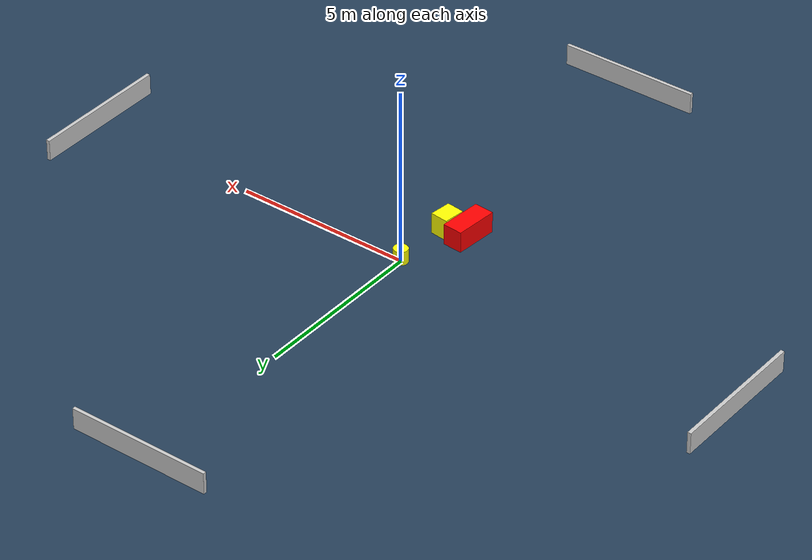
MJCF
<?xml version="1.0" ?>
<mujoco model="generated_environment">
  <option timestep="0.01" integrator="RK4" cone="elliptic"/>
  <default>
    <geom density="1"/>
  </default>
  <asset>
    <texture builtin="gradient" height="3072" name="skybox" rgb1="0.3 0.5 0.7" rgb2="0 0 0" type="skybox" width="512"/>
    <texture builtin="checker" height="300" name="groundplane" rgb1="0.2 0.3 0.4" rgb2="0.1 0.2 0.3" type="2d" width="300"/>
    <material name="groundplane" reflectance="0.2" texrepeat="5 5" texture="groundplane"/>
  </asset>
  <worldbody>
    <light dir="0 0 -1" directional="true" pos="0 0 1.5"/>
    <geom condim="3" friction="0.5 0.005 0.001" material="groundplane" name="floor" pos="0 0 0" size="0 0 0.05" type="plane"/>
    <body name="walls">
      <geom name="wall_1" condim="4" pos="-10.0 0.0 0.3" rgba="0.800000011920929 0.800000011920929 0.800000011920929 1.0" size="0.05 2.0 0.3" type="box"/>
      <geom name="wall_2" condim="4" pos="10.0 0.0 0.3" rgba="0.800000011920929 0.800000011920929 0.800000011920929 1.0" size="0.05 2.0 0.3" type="box"/>
      <geom name="wall_3" condim="4" pos="0.0 -10.0 0.3" rgba="0.800000011920929 0.800000011920929 0.800000011920929 1.0" size="2.0 0.05 0.3" type="box"/>
      <geom name="wall_4" condim="4" pos="0.0 10.0 0.3" rgba="0.800000011920929 0.800000011920929 0.800000011920929 1.0" size="2.0 0.05 0.3" type="box"/>
    </body>
    <body name="robot">
      <joint name="joint_x" type="slide" pos="0 0 0" axis="1 0 0"/>
      <joint name="joint_y" type="slide" pos="0 0 0" axis="0 1 0"/>
      <geom name="robot" type="cylinder" pos="0.0 0.0 0.2" size="0.2 0.2 0.0" mass="5.0" friction="1.0 0.005 0.0001" condim="4" rgba="1.0 1.0 0.0 1.0"/>
    </body>
    <body name="obstacle_1_movable">
      <geom name="obstacle_1_movable" condim="4" pos="-0.15421833054054324 -1.7203888883029121 0.3" euler="0 0 173.32456021677203" friction="0.0 0.005 0.001" rgba="1.0 1.0 0.0 1.0" size="0.25210689430213473 0.3061318637990387 0.3" type="box" mass="0.1"/>
      <joint type="free"/>
    </body>
    <body name="obstacle_2_static">
      <geom name="obstacle_2_static" condim="4" pos="-0.7344304888457928 -1.8283678664475036 0.3" euler="0 0 85.3124404136869" friction="0.0 0.005 0.001" rgba="1.0 0.0 0.0 1.0" size="0.6082092990122285 0.28052742175538237 0.3" type="box"/>
    </body>
  </worldbody>
  <actuator>
    <motor name="actuator_x" joint="joint_x" gear="1" ctrlrange="-1 1"/>
    <motor name="actuator_y" joint="joint_y" gear="1" ctrlrange="-1 1"/>
  </actuator>
</mujoco>
